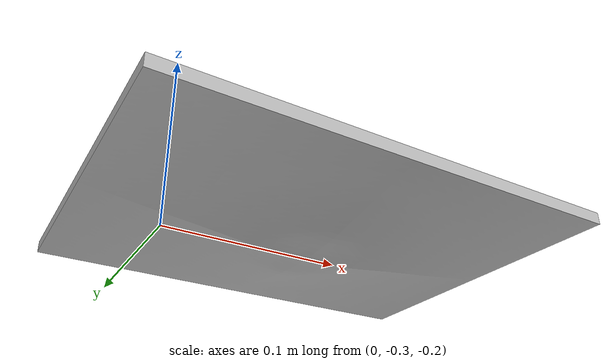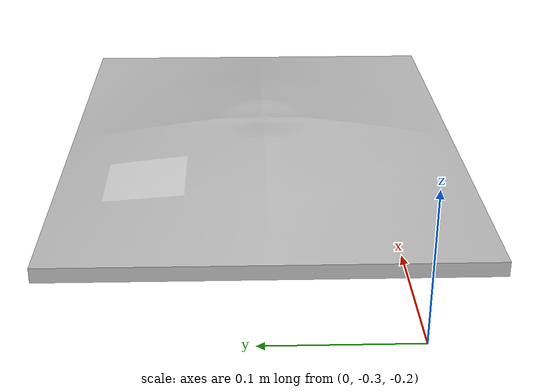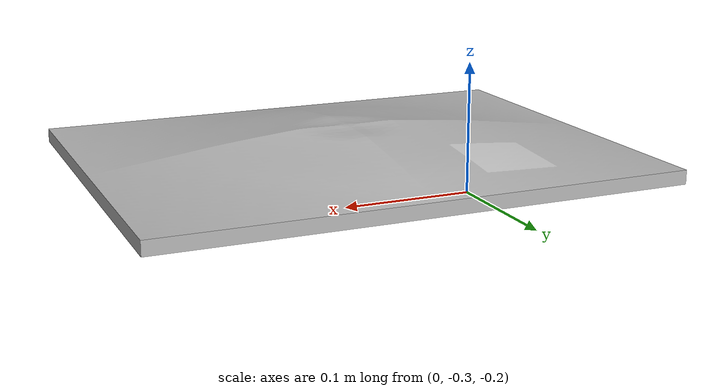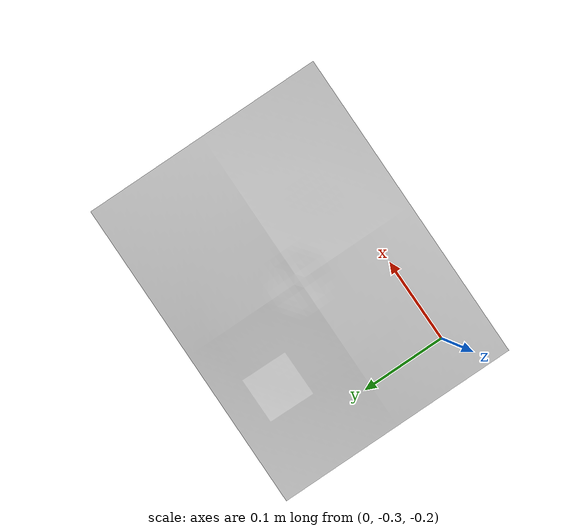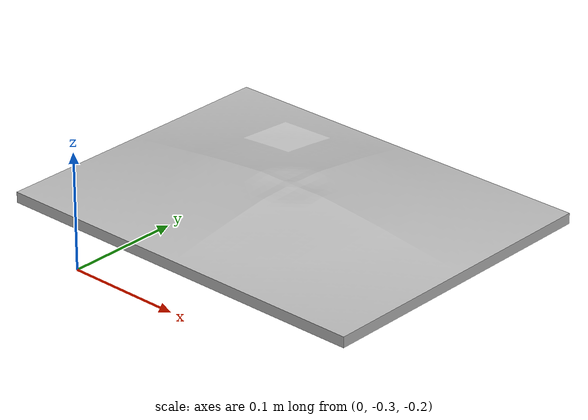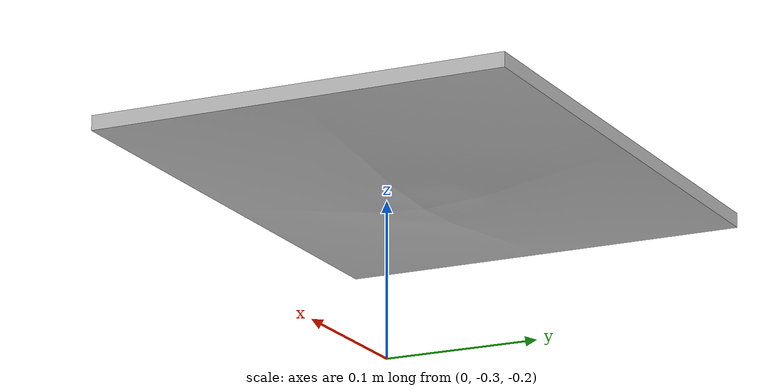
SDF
<?xml version="1.0" ?>
<sdf version="1.6">

    <!-- Import the flyer box model -->
  <model name="flyer_box_1">
    <link name="link">
      <inertial>
        <mass>1</mass>
        <inertia>
            <ixy>0</ixy>
            <ixz>0</ixz>
            <iyz>0</iyz>
            <ixx>0.05288</ixx>
            <iyy>0.05288</iyy>
            <izz>0.09132</izz>
          </inertia>
      </inertial>
      <collision name="collision">
        <geometry>
          <mesh>
            <uri>model://flyer_boxes/meshes/flyer.dae</uri>
          </mesh>
        </geometry>
      </collision>
      <visual name="visual">
	    <geometry>
          <mesh>
            <uri>model://flyer_boxes/meshes/flyer.dae</uri>
            <scale>1 1 1</scale>
          </mesh>
        </geometry>
      <meta> <layer> 1 </layer></meta>
     </visual>
    </link>
  </model>

</sdf>
